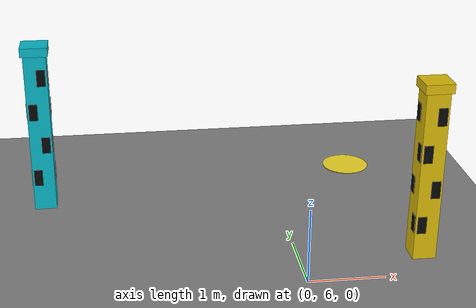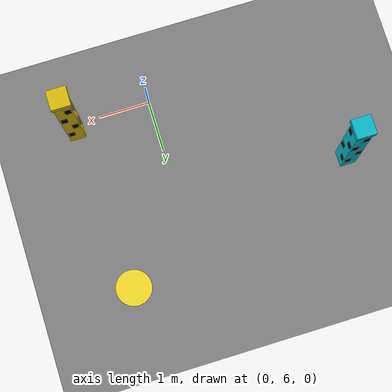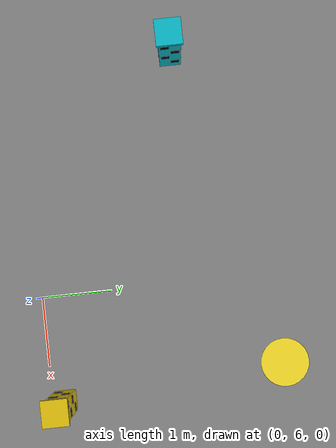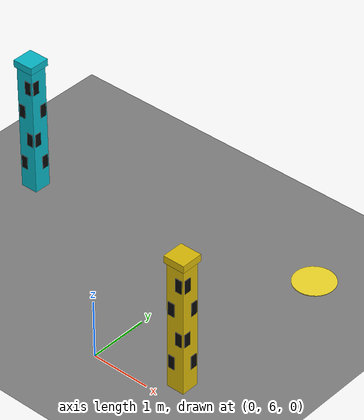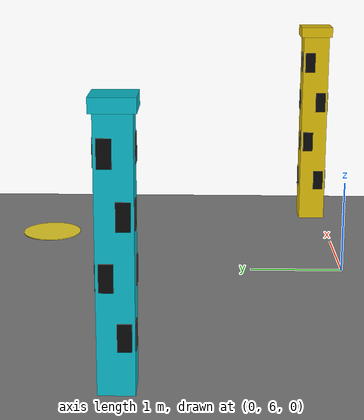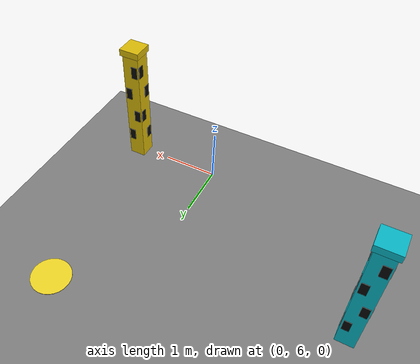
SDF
<sdf version="1.9">
 <world name="rmuc_2025_3m_vio_columns">
  <model name="ground_plane">
   <static>true</static>
   <link name="link">
    <collision name="collision">
     <geometry><plane><normal>0 0 1</normal><size>1 1</size></plane></geometry>
    </collision>
    <visual name="visual">
     <geometry><plane><normal>0 0 1</normal><size>100 100</size></plane></geometry>
     <material>
      <ambient>0.5 0.5 0.5 1</ambient>
      <diffuse>0.5 0.5 0.5 1</diffuse>
      <specular>0.5 0.5 0.5 1</specular>
     </material>
    </visual>
   </link>
  </model>
  <model name="pad_1">
   <static>true</static>
   <pose>1.3 9.4 0.012 0 0 0</pose>
   <link name="link">
    <visual name="visual">
     <geometry><cylinder><radius>0.35</radius><length>0.01</length></cylinder></geometry>
     <material>
      <ambient>0.85 0.75 0.1 1</ambient>
      <diffuse>0.95 0.85 0.15 1</diffuse>
      <emissive>0.5 0.42 0.05 1</emissive>
     </material>
    </visual>
   </link>
  </model>
  <model name="vio_column_cyan">
   <static>true</static>
   <pose>-3.30 8.20 0.20 0 0 0</pose>
   <link name="column">
    <collision name="collision">
     <pose>0 0 1.17 0 0 0</pose>
     <geometry><box><size>0.36 0.36 2.34</size></box></geometry>
    </collision>
    <visual name="body">
     <pose>0 0 1.15 0 0 0</pose>
     <geometry><box><size>0.30 0.30 2.30</size></box></geometry>
     <material>
      <ambient>0.030 0.720 0.780 1</ambient>
      <diffuse>0.030 0.720 0.780 1</diffuse>
      <specular>0.05 0.05 0.05 1</specular>
     </material>
    </visual>
    <visual name="cap">
     <pose>0 0 2.28 0 0 0</pose>
     <geometry><box><size>0.36 0.36 0.12</size></box></geometry>
     <material>
      <ambient>0.030 0.720 0.780 1</ambient>
      <diffuse>0.030 0.720 0.780 1</diffuse>
      <specular>0.05 0.05 0.05 1</specular>
     </material>
    </visual>
    <visual name="tile_f0_r0_c1">
     <pose>0.154 0.068 0.48 0 0 0</pose>
     <geometry><box><size>0.008 0.115 0.23</size></box></geometry>
     <material>
      <ambient>0.030 0.030 0.030 1</ambient>
      <diffuse>0.030 0.030 0.030 1</diffuse>
      <specular>0.05 0.05 0.05 1</specular>
     </material>
    </visual>
    <visual name="tile_f0_r1_c0">
     <pose>0.154 -0.068 0.96 0 0 0</pose>
     <geometry><box><size>0.008 0.115 0.23</size></box></geometry>
     <material>
      <ambient>0.030 0.030 0.030 1</ambient>
      <diffuse>0.030 0.030 0.030 1</diffuse>
      <specular>0.05 0.05 0.05 1</specular>
     </material>
    </visual>
    <visual name="tile_f0_r2_c1">
     <pose>0.154 0.068 1.44 0 0 0</pose>
     <geometry><box><size>0.008 0.115 0.23</size></box></geometry>
     <material>
      <ambient>0.030 0.030 0.030 1</ambient>
      <diffuse>0.030 0.030 0.030 1</diffuse>
      <specular>0.05 0.05 0.05 1</specular>
     </material>
    </visual>
    <visual name="tile_f0_r3_c0">
     <pose>0.154 -0.068 1.92 0 0 0</pose>
     <geometry><box><size>0.008 0.115 0.23</size></box></geometry>
     <material>
      <ambient>0.030 0.030 0.030 1</ambient>
      <diffuse>0.030 0.030 0.030 1</diffuse>
      <specular>0.05 0.05 0.05 1</specular>
     </material>
    </visual>
    <visual name="tile_f1_r0_c0">
     <pose>-0.154 -0.068 0.48 0 0 0</pose>
     <geometry><box><size>0.008 0.115 0.23</size></box></geometry>
     <material>
      <ambient>0.030 0.030 0.030 1</ambient>
      <diffuse>0.030 0.030 0.030 1</diffuse>
      <specular>0.05 0.05 0.05 1</specular>
     </material>
    </visual>
    <visual name="tile_f1_r1_c1">
     <pose>-0.154 0.068 0.96 0 0 0</pose>
     <geometry><box><size>0.008 0.115 0.23</size></box></geometry>
     <material>
      <ambient>0.030 0.030 0.030 1</ambient>
      <diffuse>0.030 0.030 0.030 1</diffuse>
      <specular>0.05 0.05 0.05 1</specular>
     </material>
    </visual>
    <visual name="tile_f1_r2_c0">
     <pose>-0.154 -0.068 1.44 0 0 0</pose>
     <geometry><box><size>0.008 0.115 0.23</size></box></geometry>
     <material>
      <ambient>0.030 0.030 0.030 1</ambient>
      <diffuse>0.030 0.030 0.030 1</diffuse>
      <specular>0.05 0.05 0.05 1</specular>
     </material>
    </visual>
    <visual name="tile_f1_r3_c1">
     <pose>-0.154 0.068 1.92 0 0 0</pose>
     <geometry><box><size>0.008 0.115 0.23</size></box></geometry>
     <material>
      <ambient>0.030 0.030 0.030 1</ambient>
      <diffuse>0.030 0.030 0.030 1</diffuse>
      <specular>0.05 0.05 0.05 1</specular>
     </material>
    </visual>
    <visual name="tile_f2_r0_c1">
     <pose>0.068 0.154 0.48 0 0 0</pose>
     <geometry><box><size>0.115 0.008 0.23</size></box></geometry>
     <material>
      <ambient>0.030 0.030 0.030 1</ambient>
      <diffuse>0.030 0.030 0.030 1</diffuse>
      <specular>0.05 0.05 0.05 1</specular>
     </material>
    </visual>
    <visual name="tile_f2_r1_c0">
     <pose>-0.068 0.154 0.96 0 0 0</pose>
     <geometry><box><size>0.115 0.008 0.23</size></box></geometry>
     <material>
      <ambient>0.030 0.030 0.030 1</ambient>
      <diffuse>0.030 0.030 0.030 1</diffuse>
      <specular>0.05 0.05 0.05 1</specular>
     </material>
    </visual>
    <visual name="tile_f2_r2_c1">
     <pose>0.068 0.154 1.44 0 0 0</pose>
     <geometry><box><size>0.115 0.008 0.23</size></box></geometry>
     <material>
      <ambient>0.030 0.030 0.030 1</ambient>
      <diffuse>0.030 0.030 0.030 1</diffuse>
      <specular>0.05 0.05 0.05 1</specular>
     </material>
    </visual>
    <visual name="tile_f2_r3_c0">
     <pose>-0.068 0.154 1.92 0 0 0</pose>
     <geometry><box><size>0.115 0.008 0.23</size></box></geometry>
     <material>
      <ambient>0.030 0.030 0.030 1</ambient>
      <diffuse>0.030 0.030 0.030 1</diffuse>
      <specular>0.05 0.05 0.05 1</specular>
     </material>
    </visual>
    <visual name="tile_f3_r0_c0">
     <pose>-0.068 -0.154 0.48 0 0 0</pose>
     <geometry><box><size>0.115 0.008 0.23</size></box></geometry>
     <material>
      <ambient>0.030 0.030 0.030 1</ambient>
      <diffuse>0.030 0.030 0.030 1</diffuse>
      <specular>0.05 0.05 0.05 1</specular>
     </material>
    </visual>
    <visual name="tile_f3_r1_c1">
     <pose>0.068 -0.154 0.96 0 0 0</pose>
     <geometry><box><size>0.115 0.008 0.23</size></box></geometry>
     <material>
      <ambient>0.030 0.030 0.030 1</ambient>
      <diffuse>0.030 0.030 0.030 1</diffuse>
      <specular>0.05 0.05 0.05 1</specular>
     </material>
    </visual>
    <visual name="tile_f3_r2_c0">
     <pose>-0.068 -0.154 1.44 0 0 0</pose>
     <geometry><box><size>0.115 0.008 0.23</size></box></geometry>
     <material>
      <ambient>0.030 0.030 0.030 1</ambient>
      <diffuse>0.030 0.030 0.030 1</diffuse>
      <specular>0.05 0.05 0.05 1</specular>
     </material>
    </visual>
    <visual name="tile_f3_r3_c1">
     <pose>0.068 -0.154 1.92 0 0 0</pose>
     <geometry><box><size>0.115 0.008 0.23</size></box></geometry>
     <material>
      <ambient>0.030 0.030 0.030 1</ambient>
      <diffuse>0.030 0.030 0.030 1</diffuse>
      <specular>0.05 0.05 0.05 1</specular>
     </material>
    </visual>
   </link>
  </model>
  <model name="vio_column_yellow">
   <static>true</static>
   <pose>1.50 6.20 0.20 0 0 0</pose>
   <link name="column">
    <collision name="collision">
     <pose>0 0 1.17 0 0 0</pose>
     <geometry><box><size>0.36 0.36 2.34</size></box></geometry>
    </collision>
    <visual name="body">
     <pose>0 0 1.15 0 0 0</pose>
     <geometry><box><size>0.30 0.30 2.30</size></box></geometry>
     <material>
      <ambient>0.860 0.730 0.030 1</ambient>
      <diffuse>0.860 0.730 0.030 1</diffuse>
      <specular>0.05 0.05 0.05 1</specular>
     </material>
    </visual>
    <visual name="cap">
     <pose>0 0 2.28 0 0 0</pose>
     <geometry><box><size>0.36 0.36 0.12</size></box></geometry>
     <material>
      <ambient>0.860 0.730 0.030 1</ambient>
      <diffuse>0.860 0.730 0.030 1</diffuse>
      <specular>0.05 0.05 0.05 1</specular>
     </material>
    </visual>
    <visual name="tile_f0_r0_c1">
     <pose>0.154 0.068 0.48 0 0 0</pose>
     <geometry><box><size>0.008 0.115 0.23</size></box></geometry>
     <material>
      <ambient>0.030 0.030 0.030 1</ambient>
      <diffuse>0.030 0.030 0.030 1</diffuse>
      <specular>0.05 0.05 0.05 1</specular>
     </material>
    </visual>
    <visual name="tile_f0_r1_c0">
     <pose>0.154 -0.068 0.96 0 0 0</pose>
     <geometry><box><size>0.008 0.115 0.23</size></box></geometry>
     <material>
      <ambient>0.030 0.030 0.030 1</ambient>
      <diffuse>0.030 0.030 0.030 1</diffuse>
      <specular>0.05 0.05 0.05 1</specular>
     </material>
    </visual>
    <visual name="tile_f0_r2_c1">
     <pose>0.154 0.068 1.44 0 0 0</pose>
     <geometry><box><size>0.008 0.115 0.23</size></box></geometry>
     <material>
      <ambient>0.030 0.030 0.030 1</ambient>
      <diffuse>0.030 0.030 0.030 1</diffuse>
      <specular>0.05 0.05 0.05 1</specular>
     </material>
    </visual>
    <visual name="tile_f0_r3_c0">
     <pose>0.154 -0.068 1.92 0 0 0</pose>
     <geometry><box><size>0.008 0.115 0.23</size></box></geometry>
     <material>
      <ambient>0.030 0.030 0.030 1</ambient>
      <diffuse>0.030 0.030 0.030 1</diffuse>
      <specular>0.05 0.05 0.05 1</specular>
     </material>
    </visual>
    <visual name="tile_f1_r0_c0">
     <pose>-0.154 -0.068 0.48 0 0 0</pose>
     <geometry><box><size>0.008 0.115 0.23</size></box></geometry>
     <material>
      <ambient>0.030 0.030 0.030 1</ambient>
      <diffuse>0.030 0.030 0.030 1</diffuse>
      <specular>0.05 0.05 0.05 1</specular>
     </material>
    </visual>
    <visual name="tile_f1_r1_c1">
     <pose>-0.154 0.068 0.96 0 0 0</pose>
     <geometry><box><size>0.008 0.115 0.23</size></box></geometry>
     <material>
      <ambient>0.030 0.030 0.030 1</ambient>
      <diffuse>0.030 0.030 0.030 1</diffuse>
      <specular>0.05 0.05 0.05 1</specular>
     </material>
    </visual>
    <visual name="tile_f1_r2_c0">
     <pose>-0.154 -0.068 1.44 0 0 0</pose>
     <geometry><box><size>0.008 0.115 0.23</size></box></geometry>
     <material>
      <ambient>0.030 0.030 0.030 1</ambient>
      <diffuse>0.030 0.030 0.030 1</diffuse>
      <specular>0.05 0.05 0.05 1</specular>
     </material>
    </visual>
    <visual name="tile_f1_r3_c1">
     <pose>-0.154 0.068 1.92 0 0 0</pose>
     <geometry><box><size>0.008 0.115 0.23</size></box></geometry>
     <material>
      <ambient>0.030 0.030 0.030 1</ambient>
      <diffuse>0.030 0.030 0.030 1</diffuse>
      <specular>0.05 0.05 0.05 1</specular>
     </material>
    </visual>
    <visual name="tile_f2_r0_c1">
     <pose>0.068 0.154 0.48 0 0 0</pose>
     <geometry><box><size>0.115 0.008 0.23</size></box></geometry>
     <material>
      <ambient>0.030 0.030 0.030 1</ambient>
      <diffuse>0.030 0.030 0.030 1</diffuse>
      <specular>0.05 0.05 0.05 1</specular>
     </material>
    </visual>
    <visual name="tile_f2_r1_c0">
     <pose>-0.068 0.154 0.96 0 0 0</pose>
     <geometry><box><size>0.115 0.008 0.23</size></box></geometry>
     <material>
      <ambient>0.030 0.030 0.030 1</ambient>
      <diffuse>0.030 0.030 0.030 1</diffuse>
      <specular>0.05 0.05 0.05 1</specular>
     </material>
    </visual>
    <visual name="tile_f2_r2_c1">
     <pose>0.068 0.154 1.44 0 0 0</pose>
     <geometry><box><size>0.115 0.008 0.23</size></box></geometry>
     <material>
      <ambient>0.030 0.030 0.030 1</ambient>
      <diffuse>0.030 0.030 0.030 1</diffuse>
      <specular>0.05 0.05 0.05 1</specular>
     </material>
    </visual>
    <visual name="tile_f2_r3_c0">
     <pose>-0.068 0.154 1.92 0 0 0</pose>
     <geometry><box><size>0.115 0.008 0.23</size></box></geometry>
     <material>
      <ambient>0.030 0.030 0.030 1</ambient>
      <diffuse>0.030 0.030 0.030 1</diffuse>
      <specular>0.05 0.05 0.05 1</specular>
     </material>
    </visual>
    <visual name="tile_f3_r0_c0">
     <pose>-0.068 -0.154 0.48 0 0 0</pose>
     <geometry><box><size>0.115 0.008 0.23</size></box></geometry>
     <material>
      <ambient>0.030 0.030 0.030 1</ambient>
      <diffuse>0.030 0.030 0.030 1</diffuse>
      <specular>0.05 0.05 0.05 1</specular>
     </material>
    </visual>
    <visual name="tile_f3_r1_c1">
     <pose>0.068 -0.154 0.96 0 0 0</pose>
     <geometry><box><size>0.115 0.008 0.23</size></box></geometry>
     <material>
      <ambient>0.030 0.030 0.030 1</ambient>
      <diffuse>0.030 0.030 0.030 1</diffuse>
      <specular>0.05 0.05 0.05 1</specular>
     </material>
    </visual>
    <visual name="tile_f3_r2_c0">
     <pose>-0.068 -0.154 1.44 0 0 0</pose>
     <geometry><box><size>0.115 0.008 0.23</size></box></geometry>
     <material>
      <ambient>0.030 0.030 0.030 1</ambient>
      <diffuse>0.030 0.030 0.030 1</diffuse>
      <specular>0.05 0.05 0.05 1</specular>
     </material>
    </visual>
    <visual name="tile_f3_r3_c1">
     <pose>0.068 -0.154 1.92 0 0 0</pose>
     <geometry><box><size>0.115 0.008 0.23</size></box></geometry>
     <material>
      <ambient>0.030 0.030 0.030 1</ambient>
      <diffuse>0.030 0.030 0.030 1</diffuse>
      <specular>0.05 0.05 0.05 1</specular>
     </material>
    </visual>
   </link>
  </model>
 </world>
</sdf>
